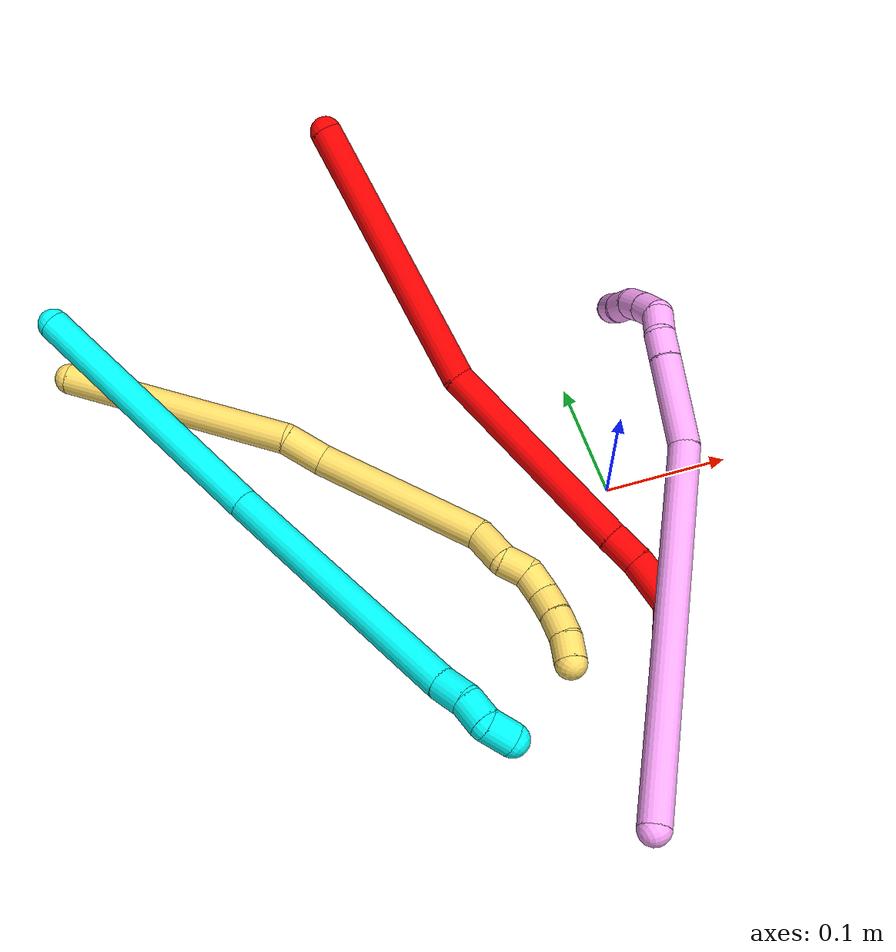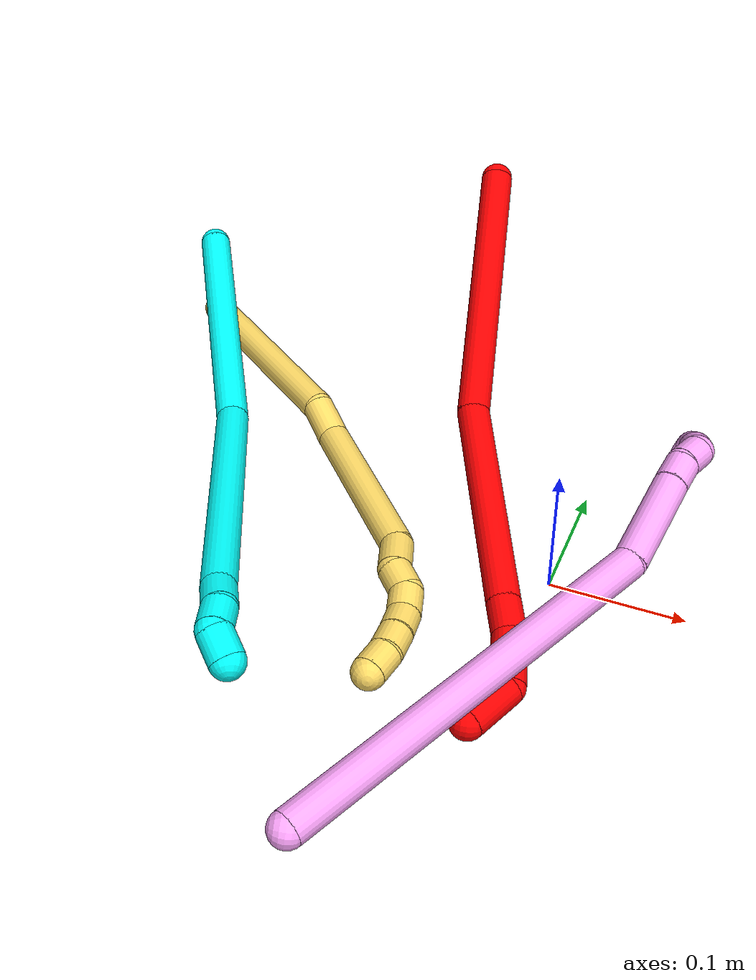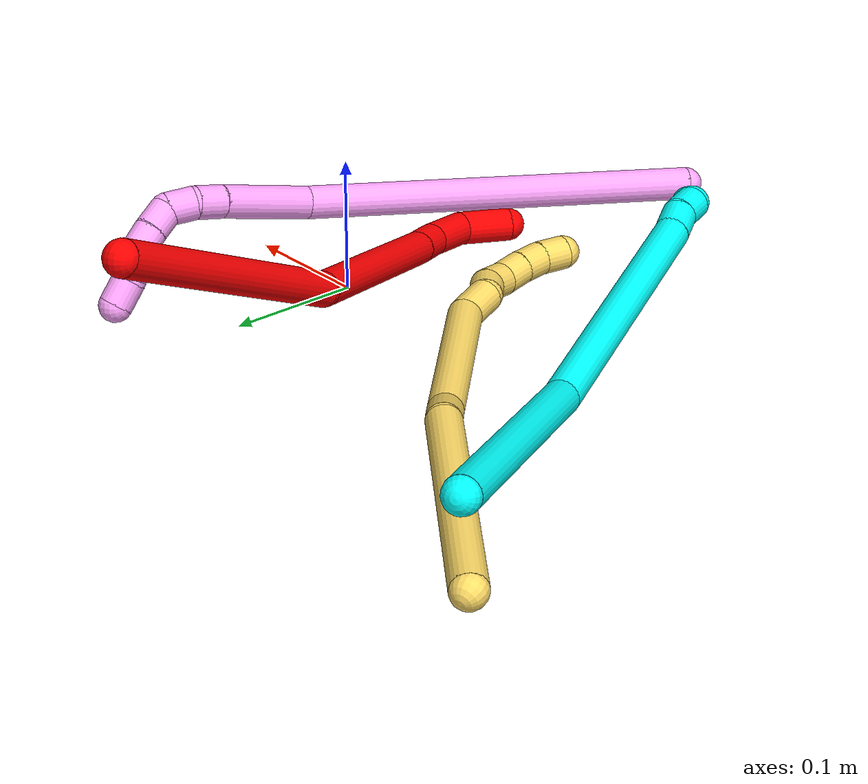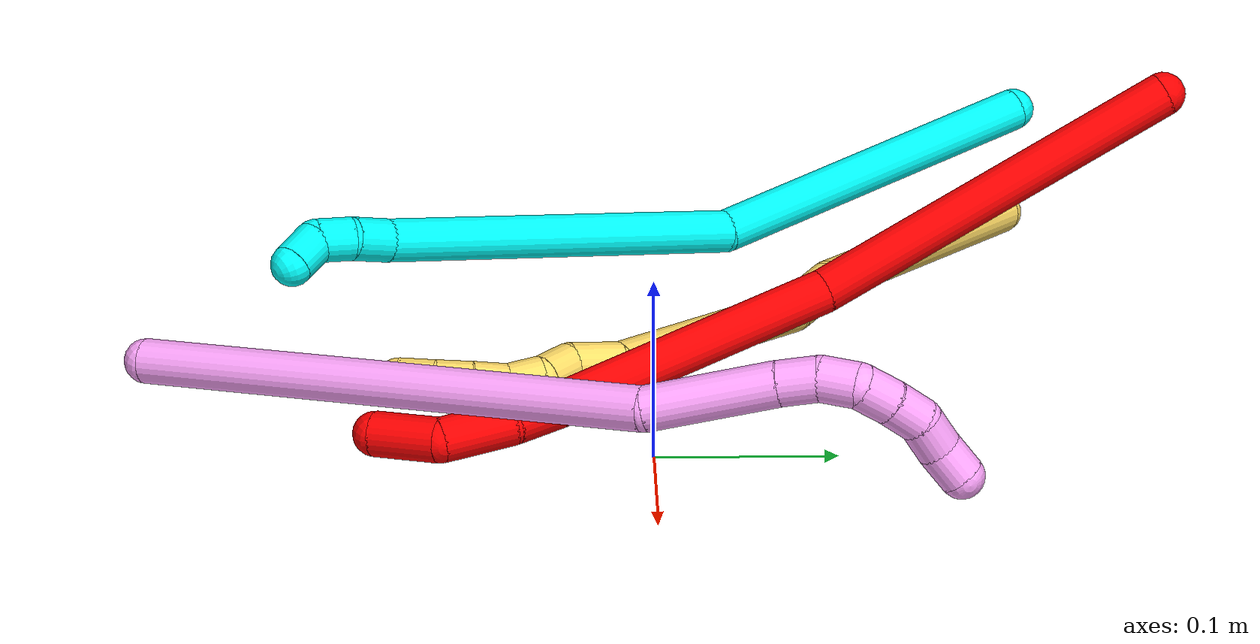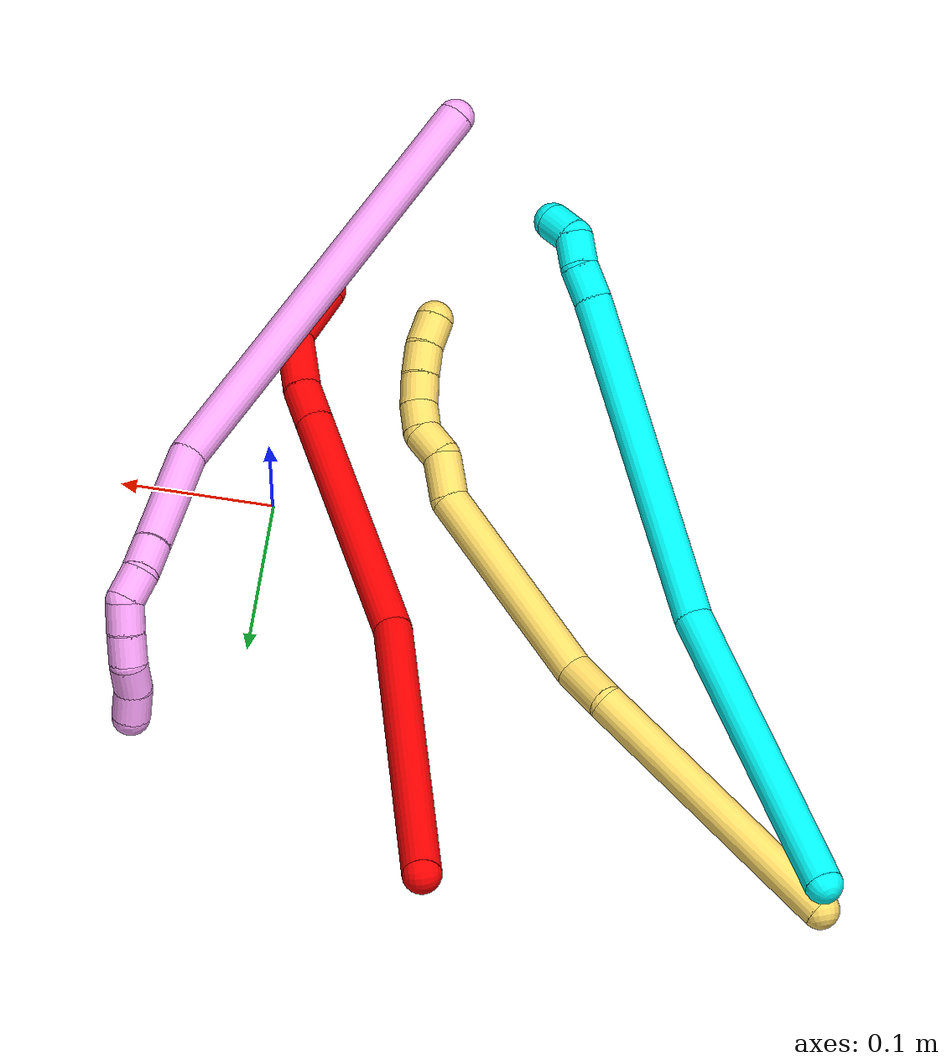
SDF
<sdf version="1.7">
 <world name="default">
  <model name="2">
   <static>0</static>
   <link name="2">
    <collision name="collision-cylinder-e_1_1_4">
     <pose>0.046627 -0.100273 0.003404 1.53686 0.435041 0.420956</pose>
     <geometry><cylinder><radius>0.0125</radius><length>0.221272</length></cylinder></geometry>
     <surface>
      <friction><ode><mu>1.16</mu><mu2>1.16</mu2><slip1>0</slip1><slip2>0</slip2></ode></friction>
      <contact><ode><kp>1e+06</kp><kd>1</kd><max_vel>0</max_vel><min_depth>0.001</min_depth></ode></contact>
     </surface>
    </collision>
    <visual name="visual-cylinder-e_1_1_4">
     <pose>0.046627 -0.100273 0.003404 1.53686 0.435041 0.420956</pose>
     <geometry><cylinder><radius>0.0125</radius><length>0.221272</length></cylinder></geometry>
     <material><ambient>1 0 0 1</ambient></material>
    </visual>
    <collision name="collision-cylinder-e_2_4_5">
     <pose>0.109907 -0.282431 0.026214 1.33809 0.195356 0.154652</pose>
     <geometry><cylinder><radius>0.0125</radius><length>0.17157</length></cylinder></geometry>
     <surface>
      <friction><ode><mu>1.16</mu><mu2>1.16</mu2><slip1>0</slip1><slip2>0</slip2></ode></friction>
      <contact><ode><kp>1e+06</kp><kd>1</kd><max_vel>0</max_vel><min_depth>0.001</min_depth></ode></contact>
     </surface>
    </collision>
    <visual name="visual-cylinder-e_2_4_5">
     <pose>0.109907 -0.282431 0.026214 1.33809 0.195356 0.154652</pose>
     <geometry><cylinder><radius>0.0125</radius><length>0.17157</length></cylinder></geometry>
     <material><ambient>1 0 0 1</ambient></material>
    </visual>
    <collision name="collision-cylinder-e_3_5_6">
     <pose>0.128367 -0.377422 0.048732 1.33774 0.133399 0.105499</pose>
     <geometry><cylinder><radius>0.0125</radius><length>0.027182</length></cylinder></geometry>
     <surface>
      <friction><ode><mu>1.16</mu><mu2>1.16</mu2><slip1>0</slip1><slip2>0</slip2></ode></friction>
      <contact><ode><kp>1e+06</kp><kd>1</kd><max_vel>0</max_vel><min_depth>0.001</min_depth></ode></contact>
     </surface>
    </collision>
    <visual name="visual-cylinder-e_3_5_6">
     <pose>0.128367 -0.377422 0.048732 1.33774 0.133399 0.105499</pose>
     <geometry><cylinder><radius>0.0125</radius><length>0.027182</length></cylinder></geometry>
     <material><ambient>1 0 0 1</ambient></material>
    </visual>
    <collision name="collision-cylinder-e_4_6_7">
     <pose>0.13248 -0.410943 0.052908 1.51871 0.11231 0.106619</pose>
     <geometry><cylinder><radius>0.0125</radius><length>0.041145</length></cylinder></geometry>
     <surface>
      <friction><ode><mu>1.16</mu><mu2>1.16</mu2><slip1>0</slip1><slip2>0</slip2></ode></friction>
      <contact><ode><kp>1e+06</kp><kd>1</kd><max_vel>0</max_vel><min_depth>0.001</min_depth></ode></contact>
     </surface>
    </collision>
    <visual name="visual-cylinder-e_4_6_7">
     <pose>0.13248 -0.410943 0.052908 1.51871 0.11231 0.106619</pose>
     <geometry><cylinder><radius>0.0125</radius><length>0.041145</length></cylinder></geometry>
     <material><ambient>1 0 0 1</ambient></material>
    </visual>
    <collision name="collision-cylinder-e_5_7_2">
     <pose>0.13598 -0.446714 0.042151 2.22688 0.061527 0.12489</pose>
     <geometry><cylinder><radius>0.0125</radius><length>0.03883</length></cylinder></geometry>
     <surface>
      <friction><ode><mu>1.16</mu><mu2>1.16</mu2><slip1>0</slip1><slip2>0</slip2></ode></friction>
      <contact><ode><kp>1e+06</kp><kd>1</kd><max_vel>0</max_vel><min_depth>0.001</min_depth></ode></contact>
     </surface>
    </collision>
    <visual name="visual-cylinder-e_5_7_2">
     <pose>0.13598 -0.446714 0.042151 2.22688 0.061527 0.12489</pose>
     <geometry><cylinder><radius>0.0125</radius><length>0.03883</length></cylinder></geometry>
     <material><ambient>1 0 0 1</ambient></material>
    </visual>
    <collision name="collision-sphere-2">
     <pose>0.137173 -0.462069 0.03033 0 -0 0</pose>
     <geometry><sphere><radius>0.0125</radius></sphere></geometry>
     <surface>
      <friction><ode><mu>1.16</mu><mu2>1.16</mu2><slip1>0</slip1><slip2>0</slip2></ode></friction>
      <contact><ode><kp>1e+06</kp><kd>1</kd><max_vel>0</max_vel><min_depth>0.001</min_depth></ode></contact>
     </surface>
    </collision>
    <visual name="visual-sphere-2">
     <pose>0.137173 -0.462069 0.03033 0 -0 0</pose>
     <geometry><sphere><radius>0.0125</radius></sphere></geometry>
     <material><ambient>1 0 0 1</ambient></material>
    </visual>
    <collision name="collision-sphere-7">
     <pose>0.134786 -0.431359 0.053972 0 -0 0</pose>
     <geometry><sphere><radius>0.0125</radius></sphere></geometry>
     <surface>
      <friction><ode><mu>1.16</mu><mu2>1.16</mu2><slip1>0</slip1><slip2>0</slip2></ode></friction>
      <contact><ode><kp>1e+06</kp><kd>1</kd><max_vel>0</max_vel><min_depth>0.001</min_depth></ode></contact>
     </surface>
    </collision>
    <visual name="visual-sphere-7">
     <pose>0.134786 -0.431359 0.053972 0 -0 0</pose>
     <geometry><sphere><radius>0.0125</radius></sphere></geometry>
     <material><ambient>1 0 0 1</ambient></material>
    </visual>
    <collision name="collision-sphere-6">
     <pose>0.130174 -0.390528 0.051843 0 -0 0</pose>
     <geometry><sphere><radius>0.0125</radius></sphere></geometry>
     <surface>
      <friction><ode><mu>1.16</mu><mu2>1.16</mu2><slip1>0</slip1><slip2>0</slip2></ode></friction>
      <contact><ode><kp>1e+06</kp><kd>1</kd><max_vel>0</max_vel><min_depth>0.001</min_depth></ode></contact>
     </surface>
    </collision>
    <visual name="visual-sphere-6">
     <pose>0.130174 -0.390528 0.051843 0 -0 0</pose>
     <geometry><sphere><radius>0.0125</radius></sphere></geometry>
     <material><ambient>1 0 0 1</ambient></material>
    </visual>
    <collision name="collision-sphere-5">
     <pose>0.126559 -0.364316 0.045621 0 -0 0</pose>
     <geometry><sphere><radius>0.0125</radius></sphere></geometry>
     <surface>
      <friction><ode><mu>1.16</mu><mu2>1.16</mu2><slip1>0</slip1><slip2>0</slip2></ode></friction>
      <contact><ode><kp>1e+06</kp><kd>1</kd><max_vel>0</max_vel><min_depth>0.001</min_depth></ode></contact>
     </surface>
    </collision>
    <visual name="visual-sphere-5">
     <pose>0.126559 -0.364316 0.045621 0 -0 0</pose>
     <geometry><sphere><radius>0.0125</radius></sphere></geometry>
     <material><ambient>1 0 0 1</ambient></material>
    </visual>
    <collision name="collision-sphere-1">
     <geometry><sphere><radius>0.0125</radius></sphere></geometry>
     <surface>
      <friction><ode><mu>1.16</mu><mu2>1.16</mu2><slip1>0</slip1><slip2>0</slip2></ode></friction>
      <contact><ode><kp>1e+06</kp><kd>1</kd><max_vel>0</max_vel><min_depth>0.001</min_depth></ode></contact>
     </surface>
    </collision>
    <visual name="visual-sphere-1">
     <geometry><sphere><radius>0.0125</radius></sphere></geometry>
     <material><ambient>1 0 0 1</ambient></material>
    </visual>
    <collision name="collision-sphere-4">
     <pose>0.093255 -0.200546 0.006807 0 -0 0</pose>
     <geometry><sphere><radius>0.0125</radius></sphere></geometry>
     <surface>
      <friction><ode><mu>1.16</mu><mu2>1.16</mu2><slip1>0</slip1><slip2>0</slip2></ode></friction>
      <contact><ode><kp>1e+06</kp><kd>1</kd><max_vel>0</max_vel><min_depth>0.001</min_depth></ode></contact>
     </surface>
    </collision>
    <visual name="visual-sphere-4">
     <pose>0.093255 -0.200546 0.006807 0 -0 0</pose>
     <geometry><sphere><radius>0.0125</radius></sphere></geometry>
     <material><ambient>1 0 0 1</ambient></material>
    </visual>
    <inertial>
     <pose>0.086789 -0.230316 0.020778 0 -0 0</pose>
     <mass>0.5</mass>
     <inertia><ixx>0.0016</ixx><ixy>0</ixy><ixz>0</ixz><iyy>0.00066</iyy><iyz>0</iyz><izz>0.000783</izz></inertia>
    </inertial>
   </link>
   <pose>-0.14523 0.288503 0.159843 2.80413 1.50773 3.05539</pose>
  </model>
  <model name="3">
   <static>0</static>
   <link name="3">
    <collision name="collision-cylinder-e_1_1_4">
     <pose>0.009735 -0.00715 -0.105658 3.07402 0.091673 1.87157</pose>
     <geometry><cylinder><radius>0.0125</radius><length>0.212692</length></cylinder></geometry>
     <surface>
      <friction><ode><mu>1.16</mu><mu2>1.16</mu2><slip1>0</slip1><slip2>0</slip2></ode></friction>
      <contact><ode><kp>1e+06</kp><kd>1</kd><max_vel>0</max_vel><min_depth>0.001</min_depth></ode></contact>
     </surface>
    </collision>
    <visual name="visual-cylinder-e_1_1_4">
     <pose>0.009735 -0.00715 -0.105658 3.07402 0.091673 1.87157</pose>
     <geometry><cylinder><radius>0.0125</radius><length>0.212692</length></cylinder></geometry>
     <material><ambient>0.003922 1 0.996078 1</ambient></material>
    </visual>
    <collision name="collision-cylinder-e_2_4_5">
     <pose>0.055931 -0.044878 -0.310788 2.84336 0.336995 1.69474</pose>
     <geometry><cylinder><radius>0.0125</radius><length>0.220536</length></cylinder></geometry>
     <surface>
      <friction><ode><mu>1.16</mu><mu2>1.16</mu2><slip1>0</slip1><slip2>0</slip2></ode></friction>
      <contact><ode><kp>1e+06</kp><kd>1</kd><max_vel>0</max_vel><min_depth>0.001</min_depth></ode></contact>
     </surface>
    </collision>
    <visual name="visual-cylinder-e_2_4_5">
     <pose>0.055931 -0.044878 -0.310788 2.84336 0.336995 1.69474</pose>
     <geometry><cylinder><radius>0.0125</radius><length>0.220536</length></cylinder></geometry>
     <material><ambient>0.003922 1 0.996078 1</ambient></material>
    </visual>
    <collision name="collision-cylinder-e_3_5_6">
     <pose>0.097614 -0.078215 -0.420375 2.87527 0.462124 2.10638</pose>
     <geometry><cylinder><radius>0.0125</radius><length>0.023427</length></cylinder></geometry>
     <surface>
      <friction><ode><mu>1.16</mu><mu2>1.16</mu2><slip1>0</slip1><slip2>0</slip2></ode></friction>
      <contact><ode><kp>1e+06</kp><kd>1</kd><max_vel>0</max_vel><min_depth>0.001</min_depth></ode></contact>
     </surface>
    </collision>
    <visual name="visual-cylinder-e_3_5_6">
     <pose>0.097614 -0.078215 -0.420375 2.87527 0.462124 2.10638</pose>
     <geometry><cylinder><radius>0.0125</radius><length>0.023427</length></cylinder></geometry>
     <material><ambient>0.003922 1 0.996078 1</ambient></material>
    </visual>
    <collision name="collision-cylinder-e_4_6_7">
     <pose>0.105092 -0.084821 -0.440186 2.76392 0.212939 1.0198</pose>
     <geometry><cylinder><radius>0.0125</radius><length>0.021343</length></cylinder></geometry>
     <surface>
      <friction><ode><mu>1.16</mu><mu2>1.16</mu2><slip1>0</slip1><slip2>0</slip2></ode></friction>
      <contact><ode><kp>1e+06</kp><kd>1</kd><max_vel>0</max_vel><min_depth>0.001</min_depth></ode></contact>
     </surface>
    </collision>
    <visual name="visual-cylinder-e_4_6_7">
     <pose>0.105092 -0.084821 -0.440186 2.76392 0.212939 1.0198</pose>
     <geometry><cylinder><radius>0.0125</radius><length>0.021343</length></cylinder></geometry>
     <material><ambient>0.003922 1 0.996078 1</ambient></material>
    </visual>
    <collision name="collision-cylinder-e_5_7_2">
     <pose>0.107461 -0.085228 -0.46033 -2.82356 0.01039 -0.064764</pose>
     <geometry><cylinder><radius>0.0125</radius><length>0.022001</length></cylinder></geometry>
     <surface>
      <friction><ode><mu>1.16</mu><mu2>1.16</mu2><slip1>0</slip1><slip2>0</slip2></ode></friction>
      <contact><ode><kp>1e+06</kp><kd>1</kd><max_vel>0</max_vel><min_depth>0.001</min_depth></ode></contact>
     </surface>
    </collision>
    <visual name="visual-cylinder-e_5_7_2">
     <pose>0.107461 -0.085228 -0.46033 -2.82356 0.01039 -0.064764</pose>
     <geometry><cylinder><radius>0.0125</radius><length>0.022001</length></cylinder></geometry>
     <material><ambient>0.003922 1 0.996078 1</ambient></material>
    </visual>
    <collision name="collision-sphere-2">
     <pose>0.107576 -0.081788 -0.470778 0 -0 0</pose>
     <geometry><sphere><radius>0.0125</radius></sphere></geometry>
     <surface>
      <friction><ode><mu>1.16</mu><mu2>1.16</mu2><slip1>0</slip1><slip2>0</slip2></ode></friction>
      <contact><ode><kp>1e+06</kp><kd>1</kd><max_vel>0</max_vel><min_depth>0.001</min_depth></ode></contact>
     </surface>
    </collision>
    <visual name="visual-sphere-2">
     <pose>0.107576 -0.081788 -0.470778 0 -0 0</pose>
     <geometry><sphere><radius>0.0125</radius></sphere></geometry>
     <material><ambient>0.003922 1 0.996078 1</ambient></material>
    </visual>
    <collision name="collision-sphere-7">
     <pose>0.107347 -0.088667 -0.449882 0 -0 0</pose>
     <geometry><sphere><radius>0.0125</radius></sphere></geometry>
     <surface>
      <friction><ode><mu>1.16</mu><mu2>1.16</mu2><slip1>0</slip1><slip2>0</slip2></ode></friction>
      <contact><ode><kp>1e+06</kp><kd>1</kd><max_vel>0</max_vel><min_depth>0.001</min_depth></ode></contact>
     </surface>
    </collision>
    <visual name="visual-sphere-7">
     <pose>0.107347 -0.088667 -0.449882 0 -0 0</pose>
     <geometry><sphere><radius>0.0125</radius></sphere></geometry>
     <material><ambient>0.003922 1 0.996078 1</ambient></material>
    </visual>
    <collision name="collision-sphere-6">
     <pose>0.102837 -0.080975 -0.430491 0 -0 0</pose>
     <geometry><sphere><radius>0.0125</radius></sphere></geometry>
     <surface>
      <friction><ode><mu>1.16</mu><mu2>1.16</mu2><slip1>0</slip1><slip2>0</slip2></ode></friction>
      <contact><ode><kp>1e+06</kp><kd>1</kd><max_vel>0</max_vel><min_depth>0.001</min_depth></ode></contact>
     </surface>
    </collision>
    <visual name="visual-sphere-6">
     <pose>0.102837 -0.080975 -0.430491 0 -0 0</pose>
     <geometry><sphere><radius>0.0125</radius></sphere></geometry>
     <material><ambient>0.003922 1 0.996078 1</ambient></material>
    </visual>
    <collision name="collision-sphere-5">
     <pose>0.092392 -0.075456 -0.41026 0 -0 0</pose>
     <geometry><sphere><radius>0.0125</radius></sphere></geometry>
     <surface>
      <friction><ode><mu>1.16</mu><mu2>1.16</mu2><slip1>0</slip1><slip2>0</slip2></ode></friction>
      <contact><ode><kp>1e+06</kp><kd>1</kd><max_vel>0</max_vel><min_depth>0.001</min_depth></ode></contact>
     </surface>
    </collision>
    <visual name="visual-sphere-5">
     <pose>0.092392 -0.075456 -0.41026 0 -0 0</pose>
     <geometry><sphere><radius>0.0125</radius></sphere></geometry>
     <material><ambient>0.003922 1 0.996078 1</ambient></material>
    </visual>
    <collision name="collision-sphere-1">
     <geometry><sphere><radius>0.0125</radius></sphere></geometry>
     <surface>
      <friction><ode><mu>1.16</mu><mu2>1.16</mu2><slip1>0</slip1><slip2>0</slip2></ode></friction>
      <contact><ode><kp>1e+06</kp><kd>1</kd><max_vel>0</max_vel><min_depth>0.001</min_depth></ode></contact>
     </surface>
    </collision>
    <visual name="visual-sphere-1">
     <geometry><sphere><radius>0.0125</radius></sphere></geometry>
     <material><ambient>0.003922 1 0.996078 1</ambient></material>
    </visual>
    <collision name="collision-sphere-4">
     <pose>0.019471 -0.0143 -0.211316 0 -0 0</pose>
     <geometry><sphere><radius>0.0125</radius></sphere></geometry>
     <surface>
      <friction><ode><mu>1.16</mu><mu2>1.16</mu2><slip1>0</slip1><slip2>0</slip2></ode></friction>
      <contact><ode><kp>1e+06</kp><kd>1</kd><max_vel>0</max_vel><min_depth>0.001</min_depth></ode></contact>
     </surface>
    </collision>
    <visual name="visual-sphere-4">
     <pose>0.019471 -0.0143 -0.211316 0 -0 0</pose>
     <geometry><sphere><radius>0.0125</radius></sphere></geometry>
     <material><ambient>0.003922 1 0.996078 1</ambient></material>
    </visual>
    <inertial>
     <pose>0.042599 -0.033871 -0.240767 0 -0 0</pose>
     <mass>0.5</mass>
     <inertia>
      <ixx>0.001284</ixx>
      <ixy>0</ixy>
      <ixz>0</ixz>
      <iyy>0.002049</iyy>
      <iyz>0</iyz>
      <izz>-0.000105</izz>
     </inertia>
    </inertial>
   </link>
   <pose>-0.387814 0.227929 0.078773 -0.929898 -1.03583 -0.009928</pose>
  </model>
  <model name="4">
   <static>0</static>
   <link name="4">
    <collision name="collision-cylinder-e_1_1_4">
     <pose>0.105404 -0.035809 -0.101976 2.80389 0.772863 2.34809</pose>
     <geometry><cylinder><radius>0.0125</radius><length>0.301937</length></cylinder></geometry>
     <surface>
      <friction><ode><mu>1.16</mu><mu2>1.16</mu2><slip1>0</slip1><slip2>0</slip2></ode></friction>
      <contact><ode><kp>1e+06</kp><kd>1</kd><max_vel>0</max_vel><min_depth>0.001</min_depth></ode></contact>
     </surface>
    </collision>
    <visual name="visual-cylinder-e_1_1_4">
     <pose>0.105404 -0.035809 -0.101976 2.80389 0.772863 2.34809</pose>
     <geometry><cylinder><radius>0.0125</radius><length>0.301937</length></cylinder></geometry>
     <material><ambient>1 0.65098 0.996078 1</ambient></material>
    </visual>
    <collision name="collision-cylinder-e_2_4_5">
     <pose>0.241167 -0.086448 -0.218449 2.34486 0.971504 1.79554</pose>
     <geometry><cylinder><radius>0.0125</radius><length>0.07353</length></cylinder></geometry>
     <surface>
      <friction><ode><mu>1.16</mu><mu2>1.16</mu2><slip1>0</slip1><slip2>0</slip2></ode></friction>
      <contact><ode><kp>1e+06</kp><kd>1</kd><max_vel>0</max_vel><min_depth>0.001</min_depth></ode></contact>
     </surface>
    </collision>
    <visual name="visual-cylinder-e_2_4_5">
     <pose>0.241167 -0.086448 -0.218449 2.34486 0.971504 1.79554</pose>
     <geometry><cylinder><radius>0.0125</radius><length>0.07353</length></cylinder></geometry>
     <material><ambient>1 0.65098 0.996078 1</ambient></material>
    </visual>
    <collision name="collision-cylinder-e_3_5_6">
     <pose>0.280809 -0.105098 -0.237593 2.45345 0.995764 1.97592</pose>
     <geometry><cylinder><radius>0.0125</radius><length>0.022126</length></cylinder></geometry>
     <surface>
      <friction><ode><mu>1.16</mu><mu2>1.16</mu2><slip1>0</slip1><slip2>0</slip2></ode></friction>
      <contact><ode><kp>1e+06</kp><kd>1</kd><max_vel>0</max_vel><min_depth>0.001</min_depth></ode></contact>
     </surface>
    </collision>
    <visual name="visual-cylinder-e_3_5_6">
     <pose>0.280809 -0.105098 -0.237593 2.45345 0.995764 1.97592</pose>
     <geometry><cylinder><radius>0.0125</radius><length>0.022126</length></cylinder></geometry>
     <material><ambient>1 0.65098 0.996078 1</ambient></material>
    </visual>
    <collision name="collision-cylinder-e_4_6_7">
     <pose>0.298618 -0.10996 -0.248492 2.97675 0.931485 2.81579</pose>
     <geometry><cylinder><radius>0.0125</radius><length>0.021244</length></cylinder></geometry>
     <surface>
      <friction><ode><mu>1.16</mu><mu2>1.16</mu2><slip1>0</slip1><slip2>0</slip2></ode></friction>
      <contact><ode><kp>1e+06</kp><kd>1</kd><max_vel>0</max_vel><min_depth>0.001</min_depth></ode></contact>
     </surface>
    </collision>
    <visual name="visual-cylinder-e_4_6_7">
     <pose>0.298618 -0.10996 -0.248492 2.97675 0.931485 2.81579</pose>
     <geometry><cylinder><radius>0.0125</radius><length>0.021244</length></cylinder></geometry>
     <material><ambient>1 0.65098 0.996078 1</ambient></material>
    </visual>
    <collision name="collision-cylinder-e_5_7_8">
     <pose>0.316376 -0.107133 -0.256314 -1.95657 1.14629 -1.52866</pose>
     <geometry><cylinder><radius>0.0125</radius><length>0.020266</length></cylinder></geometry>
     <surface>
      <friction><ode><mu>1.16</mu><mu2>1.16</mu2><slip1>0</slip1><slip2>0</slip2></ode></friction>
      <contact><ode><kp>1e+06</kp><kd>1</kd><max_vel>0</max_vel><min_depth>0.001</min_depth></ode></contact>
     </surface>
    </collision>
    <visual name="visual-cylinder-e_5_7_8">
     <pose>0.316376 -0.107133 -0.256314 -1.95657 1.14629 -1.52866</pose>
     <geometry><cylinder><radius>0.0125</radius><length>0.020266</length></cylinder></geometry>
     <material><ambient>1 0.65098 0.996078 1</ambient></material>
    </visual>
    <collision name="collision-cylinder-e_6_8_9">
     <pose>0.334509 -0.098631 -0.259185 -1.84426 1.07497 -1.33253</pose>
     <geometry><cylinder><radius>0.0125</radius><length>0.020237</length></cylinder></geometry>
     <surface>
      <friction><ode><mu>1.16</mu><mu2>1.16</mu2><slip1>0</slip1><slip2>0</slip2></ode></friction>
      <contact><ode><kp>1e+06</kp><kd>1</kd><max_vel>0</max_vel><min_depth>0.001</min_depth></ode></contact>
     </surface>
    </collision>
    <visual name="visual-cylinder-e_6_8_9">
     <pose>0.334509 -0.098631 -0.259185 -1.84426 1.07497 -1.33253</pose>
     <geometry><cylinder><radius>0.0125</radius><length>0.020237</length></cylinder></geometry>
     <material><ambient>1 0.65098 0.996078 1</ambient></material>
    </visual>
    <collision name="collision-cylinder-e_7_9_10">
     <pose>0.35011 -0.086427 -0.26102 -1.64138 0.723381 -0.77138</pose>
     <geometry><cylinder><radius>0.0125</radius><length>0.020246</length></cylinder></geometry>
     <surface>
      <friction><ode><mu>1.16</mu><mu2>1.16</mu2><slip1>0</slip1><slip2>0</slip2></ode></friction>
      <contact><ode><kp>1e+06</kp><kd>1</kd><max_vel>0</max_vel><min_depth>0.001</min_depth></ode></contact>
     </surface>
    </collision>
    <visual name="visual-cylinder-e_7_9_10">
     <pose>0.35011 -0.086427 -0.26102 -1.64138 0.723381 -0.77138</pose>
     <geometry><cylinder><radius>0.0125</radius><length>0.020246</length></cylinder></geometry>
     <material><ambient>1 0.65098 0.996078 1</ambient></material>
    </visual>
    <collision name="collision-cylinder-e_8_10_2">
     <pose>0.363859 -0.072044 -0.264393 -1.96541 0.762322 -1.08234</pose>
     <geometry><cylinder><radius>0.0125</radius><length>0.020413</length></cylinder></geometry>
     <surface>
      <friction><ode><mu>1.16</mu><mu2>1.16</mu2><slip1>0</slip1><slip2>0</slip2></ode></friction>
      <contact><ode><kp>1e+06</kp><kd>1</kd><max_vel>0</max_vel><min_depth>0.001</min_depth></ode></contact>
     </surface>
    </collision>
    <visual name="visual-cylinder-e_8_10_2">
     <pose>0.363859 -0.072044 -0.264393 -1.96541 0.762322 -1.08234</pose>
     <geometry><cylinder><radius>0.0125</radius><length>0.020413</length></cylinder></geometry>
     <material><ambient>1 0.65098 0.996078 1</ambient></material>
    </visual>
    <collision name="collision-sphere-2">
     <pose>0.370908 -0.065229 -0.267231 0 -0 0</pose>
     <geometry><sphere><radius>0.0125</radius></sphere></geometry>
     <surface>
      <friction><ode><mu>1.16</mu><mu2>1.16</mu2><slip1>0</slip1><slip2>0</slip2></ode></friction>
      <contact><ode><kp>1e+06</kp><kd>1</kd><max_vel>0</max_vel><min_depth>0.001</min_depth></ode></contact>
     </surface>
    </collision>
    <visual name="visual-sphere-2">
     <pose>0.370908 -0.065229 -0.267231 0 -0 0</pose>
     <geometry><sphere><radius>0.0125</radius></sphere></geometry>
     <material><ambient>1 0.65098 0.996078 1</ambient></material>
    </visual>
    <collision name="collision-sphere-10">
     <pose>0.35681 -0.078858 -0.261555 0 -0 0</pose>
     <geometry><sphere><radius>0.0125</radius></sphere></geometry>
     <surface>
      <friction><ode><mu>1.16</mu><mu2>1.16</mu2><slip1>0</slip1><slip2>0</slip2></ode></friction>
      <contact><ode><kp>1e+06</kp><kd>1</kd><max_vel>0</max_vel><min_depth>0.001</min_depth></ode></contact>
     </surface>
    </collision>
    <visual name="visual-sphere-10">
     <pose>0.35681 -0.078858 -0.261555 0 -0 0</pose>
     <geometry><sphere><radius>0.0125</radius></sphere></geometry>
     <material><ambient>1 0.65098 0.996078 1</ambient></material>
    </visual>
    <collision name="collision-sphere-9">
     <pose>0.343409 -0.093996 -0.260485 0 -0 0</pose>
     <geometry><sphere><radius>0.0125</radius></sphere></geometry>
     <surface>
      <friction><ode><mu>1.16</mu><mu2>1.16</mu2><slip1>0</slip1><slip2>0</slip2></ode></friction>
      <contact><ode><kp>1e+06</kp><kd>1</kd><max_vel>0</max_vel><min_depth>0.001</min_depth></ode></contact>
     </surface>
    </collision>
    <visual name="visual-sphere-9">
     <pose>0.343409 -0.093996 -0.260485 0 -0 0</pose>
     <geometry><sphere><radius>0.0125</radius></sphere></geometry>
     <material><ambient>1 0.65098 0.996078 1</ambient></material>
    </visual>
    <collision name="collision-sphere-4">
     <pose>0.210809 -0.071619 -0.203952 0 -0 0</pose>
     <geometry><sphere><radius>0.0125</radius></sphere></geometry>
     <surface>
      <friction><ode><mu>1.16</mu><mu2>1.16</mu2><slip1>0</slip1><slip2>0</slip2></ode></friction>
      <contact><ode><kp>1e+06</kp><kd>1</kd><max_vel>0</max_vel><min_depth>0.001</min_depth></ode></contact>
     </surface>
    </collision>
    <visual name="visual-sphere-4">
     <pose>0.210809 -0.071619 -0.203952 0 -0 0</pose>
     <geometry><sphere><radius>0.0125</radius></sphere></geometry>
     <material><ambient>1 0.65098 0.996078 1</ambient></material>
    </visual>
    <collision name="collision-sphere-1">
     <geometry><sphere><radius>0.0125</radius></sphere></geometry>
     <surface>
      <friction><ode><mu>1.16</mu><mu2>1.16</mu2><slip1>0</slip1><slip2>0</slip2></ode></friction>
      <contact><ode><kp>1e+06</kp><kd>1</kd><max_vel>0</max_vel><min_depth>0.001</min_depth></ode></contact>
     </surface>
    </collision>
    <visual name="visual-sphere-1">
     <geometry><sphere><radius>0.0125</radius></sphere></geometry>
     <material><ambient>1 0.65098 0.996078 1</ambient></material>
    </visual>
    <collision name="collision-sphere-8">
     <pose>0.325609 -0.103266 -0.257885 0 -0 0</pose>
     <geometry><sphere><radius>0.0125</radius></sphere></geometry>
     <surface>
      <friction><ode><mu>1.16</mu><mu2>1.16</mu2><slip1>0</slip1><slip2>0</slip2></ode></friction>
      <contact><ode><kp>1e+06</kp><kd>1</kd><max_vel>0</max_vel><min_depth>0.001</min_depth></ode></contact>
     </surface>
    </collision>
    <visual name="visual-sphere-8">
     <pose>0.325609 -0.103266 -0.257885 0 -0 0</pose>
     <geometry><sphere><radius>0.0125</radius></sphere></geometry>
     <material><ambient>1 0.65098 0.996078 1</ambient></material>
    </visual>
    <collision name="collision-sphere-5">
     <pose>0.271526 -0.101277 -0.232945 0 -0 0</pose>
     <geometry><sphere><radius>0.0125</radius></sphere></geometry>
     <surface>
      <friction><ode><mu>1.16</mu><mu2>1.16</mu2><slip1>0</slip1><slip2>0</slip2></ode></friction>
      <contact><ode><kp>1e+06</kp><kd>1</kd><max_vel>0</max_vel><min_depth>0.001</min_depth></ode></contact>
     </surface>
    </collision>
    <visual name="visual-sphere-5">
     <pose>0.271526 -0.101277 -0.232945 0 -0 0</pose>
     <geometry><sphere><radius>0.0125</radius></sphere></geometry>
     <material><ambient>1 0.65098 0.996078 1</ambient></material>
    </visual>
    <collision name="collision-sphere-6">
     <pose>0.290093 -0.10892 -0.24224 0 -0 0</pose>
     <geometry><sphere><radius>0.0125</radius></sphere></geometry>
     <surface>
      <friction><ode><mu>1.16</mu><mu2>1.16</mu2><slip1>0</slip1><slip2>0</slip2></ode></friction>
      <contact><ode><kp>1e+06</kp><kd>1</kd><max_vel>0</max_vel><min_depth>0.001</min_depth></ode></contact>
     </surface>
    </collision>
    <visual name="visual-sphere-6">
     <pose>0.290093 -0.10892 -0.24224 0 -0 0</pose>
     <geometry><sphere><radius>0.0125</radius></sphere></geometry>
     <material><ambient>1 0.65098 0.996078 1</ambient></material>
    </visual>
    <collision name="collision-sphere-7">
     <pose>0.307142 -0.111 -0.254744 0 -0 0</pose>
     <geometry><sphere><radius>0.0125</radius></sphere></geometry>
     <surface>
      <friction><ode><mu>1.16</mu><mu2>1.16</mu2><slip1>0</slip1><slip2>0</slip2></ode></friction>
      <contact><ode><kp>1e+06</kp><kd>1</kd><max_vel>0</max_vel><min_depth>0.001</min_depth></ode></contact>
     </surface>
    </collision>
    <visual name="visual-sphere-7">
     <pose>0.307142 -0.111 -0.254744 0 -0 0</pose>
     <geometry><sphere><radius>0.0125</radius></sphere></geometry>
     <material><ambient>1 0.65098 0.996078 1</ambient></material>
    </visual>
    <inertial>
     <pose>0.179625 -0.058436 -0.157021 0 -0 0</pose>
     <mass>0.5</mass>
     <inertia>
      <ixx>6.2e-05</ixx>
      <ixy>0</ixy>
      <ixz>0</ixz>
      <iyy>0.003128</iyy>
      <iyz>0</iyz>
      <izz>-0.001109</izz>
     </inertia>
    </inertial>
   </link>
   <pose>-0.074737 -0.278346 0.031505 -1.4518 0.140025 1.89799</pose>
  </model>
  <model name="5">
   <static>0</static>
   <link name="5">
    <collision name="collision-cylinder-e_1_1_4">
     <pose>0.02658 -0.051167 -0.07696 2.55485 0.280052 0.873109</pose>
     <geometry><cylinder><radius>0.0125</radius><length>0.192328</length></cylinder></geometry>
     <surface>
      <friction><ode><mu>1.16</mu><mu2>1.16</mu2><slip1>0</slip1><slip2>0</slip2></ode></friction>
      <contact><ode><kp>1e+06</kp><kd>1</kd><max_vel>0</max_vel><min_depth>0.001</min_depth></ode></contact>
     </surface>
    </collision>
    <visual name="visual-cylinder-e_1_1_4">
     <pose>0.02658 -0.051167 -0.07696 2.55485 0.280052 0.873109</pose>
     <geometry><cylinder><radius>0.0125</radius><length>0.192328</length></cylinder></geometry>
     <material><ambient>1 0.858824 0.4 1</ambient></material>
    </visual>
    <collision name="collision-cylinder-e_2_4_5">
     <pose>0.062942 -0.108884 -0.165875 2.6404 0.622458 1.79731</pose>
     <geometry><cylinder><radius>0.0125</radius><length>0.033555</length></cylinder></geometry>
     <surface>
      <friction><ode><mu>1.16</mu><mu2>1.16</mu2><slip1>0</slip1><slip2>0</slip2></ode></friction>
      <contact><ode><kp>1e+06</kp><kd>1</kd><max_vel>0</max_vel><min_depth>0.001</min_depth></ode></contact>
     </surface>
    </collision>
    <visual name="visual-cylinder-e_2_4_5">
     <pose>0.062942 -0.108884 -0.165875 2.6404 0.622458 1.79731</pose>
     <geometry><cylinder><radius>0.0125</radius><length>0.033555</length></cylinder></geometry>
     <material><ambient>1 0.858824 0.4 1</ambient></material>
    </visual>
    <collision name="collision-cylinder-e_3_5_6">
     <pose>0.094794 -0.141894 -0.239453 2.736 0.317918 1.3244</pose>
     <geometry><cylinder><radius>0.0125</radius><length>0.141206</length></cylinder></geometry>
     <surface>
      <friction><ode><mu>1.16</mu><mu2>1.16</mu2><slip1>0</slip1><slip2>0</slip2></ode></friction>
      <contact><ode><kp>1e+06</kp><kd>1</kd><max_vel>0</max_vel><min_depth>0.001</min_depth></ode></contact>
     </surface>
    </collision>
    <visual name="visual-cylinder-e_3_5_6">
     <pose>0.094794 -0.141894 -0.239453 2.736 0.317918 1.3244</pose>
     <geometry><cylinder><radius>0.0125</radius><length>0.141206</length></cylinder></geometry>
     <material><ambient>1 0.858824 0.4 1</ambient></material>
    </visual>
    <collision name="collision-cylinder-e_4_6_7">
     <pose>0.120053 -0.167788 -0.31557 -3.10241 0.216423 -2.78468</pose>
     <geometry><cylinder><radius>0.0125</radius><length>0.029701</length></cylinder></geometry>
     <surface>
      <friction><ode><mu>1.16</mu><mu2>1.16</mu2><slip1>0</slip1><slip2>0</slip2></ode></friction>
      <contact><ode><kp>1e+06</kp><kd>1</kd><max_vel>0</max_vel><min_depth>0.001</min_depth></ode></contact>
     </surface>
    </collision>
    <visual name="visual-cylinder-e_4_6_7">
     <pose>0.120053 -0.167788 -0.31557 -3.10241 0.216423 -2.78468</pose>
     <geometry><cylinder><radius>0.0125</radius><length>0.029701</length></cylinder></geometry>
     <material><ambient>1 0.858824 0.4 1</ambient></material>
    </visual>
    <collision name="collision-cylinder-e_5_7_8">
     <pose>0.127778 -0.171438 -0.338865 2.69459 0.435082 1.54286</pose>
     <geometry><cylinder><radius>0.0125</radius><length>0.021527</length></cylinder></geometry>
     <surface>
      <friction><ode><mu>1.16</mu><mu2>1.16</mu2><slip1>0</slip1><slip2>0</slip2></ode></friction>
      <contact><ode><kp>1e+06</kp><kd>1</kd><max_vel>0</max_vel><min_depth>0.001</min_depth></ode></contact>
     </surface>
    </collision>
    <visual name="visual-cylinder-e_5_7_8">
     <pose>0.127778 -0.171438 -0.338865 2.69459 0.435082 1.54286</pose>
     <geometry><cylinder><radius>0.0125</radius><length>0.021527</length></cylinder></geometry>
     <material><ambient>1 0.858824 0.4 1</ambient></material>
    </visual>
    <collision name="collision-cylinder-e_6_8_9">
     <pose>0.136812 -0.174553 -0.356733 -3.02033 0.457567 -2.63155</pose>
     <geometry><cylinder><radius>0.0125</radius><length>0.020361</length></cylinder></geometry>
     <surface>
      <friction><ode><mu>1.16</mu><mu2>1.16</mu2><slip1>0</slip1><slip2>0</slip2></ode></friction>
      <contact><ode><kp>1e+06</kp><kd>1</kd><max_vel>0</max_vel><min_depth>0.001</min_depth></ode></contact>
     </surface>
    </collision>
    <visual name="visual-cylinder-e_6_8_9">
     <pose>0.136812 -0.174553 -0.356733 -3.02033 0.457567 -2.63155</pose>
     <geometry><cylinder><radius>0.0125</radius><length>0.020361</length></cylinder></geometry>
     <material><ambient>1 0.858824 0.4 1</ambient></material>
    </visual>
    <collision name="collision-cylinder-e_7_9_10">
     <pose>0.143106 -0.170996 -0.375599 -2.89646 0.175983 -1.24299</pose>
     <geometry><cylinder><radius>0.0125</radius><length>0.020521</length></cylinder></geometry>
     <surface>
      <friction><ode><mu>1.16</mu><mu2>1.16</mu2><slip1>0</slip1><slip2>0</slip2></ode></friction>
      <contact><ode><kp>1e+06</kp><kd>1</kd><max_vel>0</max_vel><min_depth>0.001</min_depth></ode></contact>
     </surface>
    </collision>
    <visual name="visual-cylinder-e_7_9_10">
     <pose>0.143106 -0.170996 -0.375599 -2.89646 0.175983 -1.24299</pose>
     <geometry><cylinder><radius>0.0125</radius><length>0.020521</length></cylinder></geometry>
     <material><ambient>1 0.858824 0.4 1</ambient></material>
    </visual>
    <collision name="collision-cylinder-e_8_10_11">
     <pose>0.147043 -0.165234 -0.39473 -2.80069 0.212952 -1.11137</pose>
     <geometry><cylinder><radius>0.0125</radius><length>0.02026</length></cylinder></geometry>
     <surface>
      <friction><ode><mu>1.16</mu><mu2>1.16</mu2><slip1>0</slip1><slip2>0</slip2></ode></friction>
      <contact><ode><kp>1e+06</kp><kd>1</kd><max_vel>0</max_vel><min_depth>0.001</min_depth></ode></contact>
     </surface>
    </collision>
    <visual name="visual-cylinder-e_8_10_11">
     <pose>0.147043 -0.165234 -0.39473 -2.80069 0.212952 -1.11137</pose>
     <geometry><cylinder><radius>0.0125</radius><length>0.02026</length></cylinder></geometry>
     <material><ambient>1 0.858824 0.4 1</ambient></material>
    </visual>
    <collision name="collision-cylinder-e_9_11_2">
     <pose>0.151536 -0.156603 -0.412526 -2.58034 0.231029 -0.765422</pose>
     <geometry><cylinder><radius>0.0125</radius><length>0.020541</length></cylinder></geometry>
     <surface>
      <friction><ode><mu>1.16</mu><mu2>1.16</mu2><slip1>0</slip1><slip2>0</slip2></ode></friction>
      <contact><ode><kp>1e+06</kp><kd>1</kd><max_vel>0</max_vel><min_depth>0.001</min_depth></ode></contact>
     </surface>
    </collision>
    <visual name="visual-cylinder-e_9_11_2">
     <pose>0.151536 -0.156603 -0.412526 -2.58034 0.231029 -0.765422</pose>
     <geometry><cylinder><radius>0.0125</radius><length>0.020541</length></cylinder></geometry>
     <material><ambient>1 0.858824 0.4 1</ambient></material>
    </visual>
    <collision name="collision-sphere-2">
     <pose>0.153888 -0.151282 -0.42099 0 -0 0</pose>
     <geometry><sphere><radius>0.0125</radius></sphere></geometry>
     <surface>
      <friction><ode><mu>1.16</mu><mu2>1.16</mu2><slip1>0</slip1><slip2>0</slip2></ode></friction>
      <contact><ode><kp>1e+06</kp><kd>1</kd><max_vel>0</max_vel><min_depth>0.001</min_depth></ode></contact>
     </surface>
    </collision>
    <visual name="visual-sphere-2">
     <pose>0.153888 -0.151282 -0.42099 0 -0 0</pose>
     <geometry><sphere><radius>0.0125</radius></sphere></geometry>
     <material><ambient>1 0.858824 0.4 1</ambient></material>
    </visual>
    <collision name="collision-sphere-11">
     <pose>0.149184 -0.161924 -0.404062 0 -0 0</pose>
     <geometry><sphere><radius>0.0125</radius></sphere></geometry>
     <surface>
      <friction><ode><mu>1.16</mu><mu2>1.16</mu2><slip1>0</slip1><slip2>0</slip2></ode></friction>
      <contact><ode><kp>1e+06</kp><kd>1</kd><max_vel>0</max_vel><min_depth>0.001</min_depth></ode></contact>
     </surface>
    </collision>
    <visual name="visual-sphere-11">
     <pose>0.149184 -0.161924 -0.404062 0 -0 0</pose>
     <geometry><sphere><radius>0.0125</radius></sphere></geometry>
     <material><ambient>1 0.858824 0.4 1</ambient></material>
    </visual>
    <collision name="collision-sphere-10">
     <pose>0.144902 -0.168545 -0.385399 0 -0 0</pose>
     <geometry><sphere><radius>0.0125</radius></sphere></geometry>
     <surface>
      <friction><ode><mu>1.16</mu><mu2>1.16</mu2><slip1>0</slip1><slip2>0</slip2></ode></friction>
      <contact><ode><kp>1e+06</kp><kd>1</kd><max_vel>0</max_vel><min_depth>0.001</min_depth></ode></contact>
     </surface>
    </collision>
    <visual name="visual-sphere-10">
     <pose>0.144902 -0.168545 -0.385399 0 -0 0</pose>
     <geometry><sphere><radius>0.0125</radius></sphere></geometry>
     <material><ambient>1 0.858824 0.4 1</ambient></material>
    </visual>
    <collision name="collision-sphere-9">
     <pose>0.14131 -0.173448 -0.365799 0 -0 0</pose>
     <geometry><sphere><radius>0.0125</radius></sphere></geometry>
     <surface>
      <friction><ode><mu>1.16</mu><mu2>1.16</mu2><slip1>0</slip1><slip2>0</slip2></ode></friction>
      <contact><ode><kp>1e+06</kp><kd>1</kd><max_vel>0</max_vel><min_depth>0.001</min_depth></ode></contact>
     </surface>
    </collision>
    <visual name="visual-sphere-9">
     <pose>0.14131 -0.173448 -0.365799 0 -0 0</pose>
     <geometry><sphere><radius>0.0125</radius></sphere></geometry>
     <material><ambient>1 0.858824 0.4 1</ambient></material>
    </visual>
    <collision name="collision-sphere-4">
     <pose>0.05316 -0.102335 -0.153921 0 -0 0</pose>
     <geometry><sphere><radius>0.0125</radius></sphere></geometry>
     <surface>
      <friction><ode><mu>1.16</mu><mu2>1.16</mu2><slip1>0</slip1><slip2>0</slip2></ode></friction>
      <contact><ode><kp>1e+06</kp><kd>1</kd><max_vel>0</max_vel><min_depth>0.001</min_depth></ode></contact>
     </surface>
    </collision>
    <visual name="visual-sphere-4">
     <pose>0.05316 -0.102335 -0.153921 0 -0 0</pose>
     <geometry><sphere><radius>0.0125</radius></sphere></geometry>
     <material><ambient>1 0.858824 0.4 1</ambient></material>
    </visual>
    <collision name="collision-sphere-1">
     <geometry><sphere><radius>0.0125</radius></sphere></geometry>
     <surface>
      <friction><ode><mu>1.16</mu><mu2>1.16</mu2><slip1>0</slip1><slip2>0</slip2></ode></friction>
      <contact><ode><kp>1e+06</kp><kd>1</kd><max_vel>0</max_vel><min_depth>0.001</min_depth></ode></contact>
     </surface>
    </collision>
    <visual name="visual-sphere-1">
     <geometry><sphere><radius>0.0125</radius></sphere></geometry>
     <material><ambient>1 0.858824 0.4 1</ambient></material>
    </visual>
    <collision name="collision-sphere-8">
     <pose>0.132315 -0.175658 -0.347666 0 -0 0</pose>
     <geometry><sphere><radius>0.0125</radius></sphere></geometry>
     <surface>
      <friction><ode><mu>1.16</mu><mu2>1.16</mu2><slip1>0</slip1><slip2>0</slip2></ode></friction>
      <contact><ode><kp>1e+06</kp><kd>1</kd><max_vel>0</max_vel><min_depth>0.001</min_depth></ode></contact>
     </surface>
    </collision>
    <visual name="visual-sphere-8">
     <pose>0.132315 -0.175658 -0.347666 0 -0 0</pose>
     <geometry><sphere><radius>0.0125</radius></sphere></geometry>
     <material><ambient>1 0.858824 0.4 1</ambient></material>
    </visual>
    <collision name="collision-sphere-5">
     <pose>0.072724 -0.115433 -0.17783 0 -0 0</pose>
     <geometry><sphere><radius>0.0125</radius></sphere></geometry>
     <surface>
      <friction><ode><mu>1.16</mu><mu2>1.16</mu2><slip1>0</slip1><slip2>0</slip2></ode></friction>
      <contact><ode><kp>1e+06</kp><kd>1</kd><max_vel>0</max_vel><min_depth>0.001</min_depth></ode></contact>
     </surface>
    </collision>
    <visual name="visual-sphere-5">
     <pose>0.072724 -0.115433 -0.17783 0 -0 0</pose>
     <geometry><sphere><radius>0.0125</radius></sphere></geometry>
     <material><ambient>1 0.858824 0.4 1</ambient></material>
    </visual>
    <collision name="collision-sphere-6">
     <pose>0.116864 -0.168356 -0.301077 0 -0 0</pose>
     <geometry><sphere><radius>0.0125</radius></sphere></geometry>
     <surface>
      <friction><ode><mu>1.16</mu><mu2>1.16</mu2><slip1>0</slip1><slip2>0</slip2></ode></friction>
      <contact><ode><kp>1e+06</kp><kd>1</kd><max_vel>0</max_vel><min_depth>0.001</min_depth></ode></contact>
     </surface>
    </collision>
    <visual name="visual-sphere-6">
     <pose>0.116864 -0.168356 -0.301077 0 -0 0</pose>
     <geometry><sphere><radius>0.0125</radius></sphere></geometry>
     <material><ambient>1 0.858824 0.4 1</ambient></material>
    </visual>
    <collision name="collision-sphere-7">
     <pose>0.123242 -0.167219 -0.330063 0 -0 0</pose>
     <geometry><sphere><radius>0.0125</radius></sphere></geometry>
     <surface>
      <friction><ode><mu>1.16</mu><mu2>1.16</mu2><slip1>0</slip1><slip2>0</slip2></ode></friction>
      <contact><ode><kp>1e+06</kp><kd>1</kd><max_vel>0</max_vel><min_depth>0.001</min_depth></ode></contact>
     </surface>
    </collision>
    <visual name="visual-sphere-7">
     <pose>0.123242 -0.167219 -0.330063 0 -0 0</pose>
     <geometry><sphere><radius>0.0125</radius></sphere></geometry>
     <material><ambient>1 0.858824 0.4 1</ambient></material>
    </visual>
    <inertial>
     <pose>0.07748 -0.111665 -0.204579 0 -0 0</pose>
     <mass>0.5</mass>
     <inertia><ixx>0.001098</ixx><ixy>0</ixy><ixz>0</ixz><iyy>0.00038</iyy><iyz>0</iyz><izz>0.00013</izz></inertia>
    </inertial>
   </link>
   <pose>-0.387904 0.221993 0.013027 -2.88113 1.23164 -0.950197</pose>
  </model>
 </world>
</sdf>
